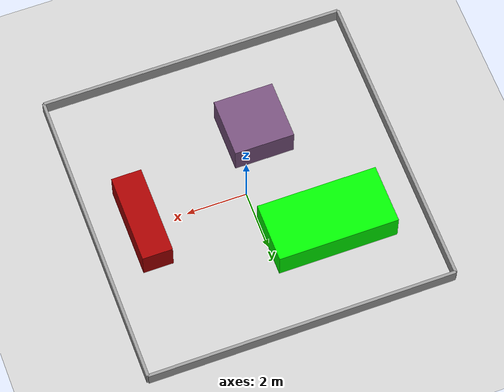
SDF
<sdf version="1.7">
 <world name="default">
  <light name="sun" type="directional">
   <pose>0 0 10 0 -0 0</pose>
   <diffuse>0.8 0.8 0.8 1</diffuse>
   <specular>0.1 0.1 0.1 1</specular>
   <attenuation>
    <range>1000</range>
    <constant>0.9</constant>
    <linear>0.01</linear>
    <quadratic>0.001</quadratic>
   </attenuation>
   <direction>-0.5 0.5 -1</direction>
   <spot><inner_angle>0</inner_angle><outer_angle>0</outer_angle><falloff>0</falloff></spot>
  </light>
  <model name="ground_plane">
   <static>1</static>
   <link name="link">
    <collision name="collision">
     <geometry><plane><normal>0 0 1</normal><size>100 100</size></plane></geometry>
     <surface><friction><ode><mu>100</mu><mu2>50</mu2></ode></friction></surface>
    </collision>
    <visual name="visual">
     <cast_shadows>0</cast_shadows>
     <geometry><plane><normal>0 0 1</normal><size>100 100</size></plane></geometry>
     <material>
      <script><uri>file://media/materials/scripts/gazebo.material</uri><name>Gazebo/Grey</name></script>
     </material>
    </visual>
   </link>
  </model>
  <gravity>0 0 -9.8</gravity>
  <magnetic_field>6e-06 2.3e-05 -4.2e-05</magnetic_field>
  <atmosphere type="adiabatic"/>
  <physics name="default_physics" default="0" type="ode">
   <max_step_size>0.001</max_step_size>
   <real_time_factor>1</real_time_factor>
   <real_time_update_rate>1000</real_time_update_rate>
  </physics>
  <scene><ambient>0.4 0.4 0.4 1</ambient><background>0.7 0.7 0.7 1</background><shadows>1</shadows></scene>
  <spherical_coordinates>
   <surface_model>EARTH_WGS84</surface_model>
   <latitude_deg>0</latitude_deg>
   <longitude_deg>0</longitude_deg>
   <elevation>0</elevation>
   <heading_deg>0</heading_deg>
  </spherical_coordinates>
  <model name="grey_wall">
   <static>1</static>
   <link name="link">
    <pose>0 0 1.4 0 -0 0</pose>
    <collision name="collision"><geometry><box><size>10.2 0.1 0.5</size></box></geometry></collision>
    <visual name="visual">
     <cast_shadows>0</cast_shadows>
     <geometry><box><size>10.2 0.1 0.5</size></box></geometry>
     <material>
      <script>
       <uri>model://grey_wall/materials/scripts</uri>
       <uri>model://grey_wall/materials/textures</uri>
       <name>vrc/grey_wall</name>
      </script>
     </material>
    </visual>
   </link>
   <pose>0 -5.1 -1.1 0 -0 0</pose>
  </model>
  <model name="grey_wall_0">
   <static>1</static>
   <link name="link">
    <pose>0 0 1.4 0 -0 0</pose>
    <collision name="collision"><geometry><box><size>10.2 0.1 0.5</size></box></geometry></collision>
    <visual name="visual">
     <cast_shadows>0</cast_shadows>
     <geometry><box><size>10.2 0.1 0.5</size></box></geometry>
     <material>
      <script>
       <uri>model://grey_wall/materials/scripts</uri>
       <uri>model://grey_wall/materials/textures</uri>
       <name>vrc/grey_wall</name>
      </script>
     </material>
    </visual>
   </link>
   <pose>5.1 0 -1.1 0 -0 1.57</pose>
  </model>
  <model name="grey_wall_0_clone">
   <static>1</static>
   <link name="link">
    <pose>0 0 1.4 0 -0 0</pose>
    <collision name="collision"><geometry><box><size>10.2 0.1 0.5</size></box></geometry></collision>
    <visual name="visual">
     <cast_shadows>0</cast_shadows>
     <geometry><box><size>10.2 0.1 0.5</size></box></geometry>
     <material>
      <script>
       <uri>model://grey_wall/materials/scripts</uri>
       <uri>model://grey_wall/materials/textures</uri>
       <name>vrc/grey_wall</name>
      </script>
     </material>
    </visual>
   </link>
   <pose>-5.1 0 -1.1 0 -0 1.57</pose>
  </model>
  <model name="grey_wall_clone">
   <static>1</static>
   <link name="link">
    <pose>0 0 1.4 0 -0 0</pose>
    <collision name="collision"><geometry><box><size>10.2 0.1 0.5</size></box></geometry></collision>
    <visual name="visual">
     <cast_shadows>0</cast_shadows>
     <geometry><box><size>10.2 0.1 0.5</size></box></geometry>
     <material>
      <script>
       <uri>model://grey_wall/materials/scripts</uri>
       <uri>model://grey_wall/materials/textures</uri>
       <name>vrc/grey_wall</name>
      </script>
     </material>
    </visual>
   </link>
   <pose>0 5.1 -1.1 0 -0 0</pose>
  </model>
  <model name="my_box7">
   <link name="link_0">
    <inertial>
     <mass>1</mass>
     <inertia>
      <ixx>0.166667</ixx>
      <ixy>0</ixy>
      <ixz>0</ixz>
      <iyy>0.166667</iyy>
      <iyz>0</iyz>
      <izz>0.166667</izz>
     </inertia>
    </inertial>
    <visual name="visual">
     <geometry><box><size>2 2 1</size></box></geometry>
     <material>
      <lighting>1</lighting>
      <script><uri>file://media/materials/scripts/gazebo.material</uri><name>Gazebo/Grey</name></script>
      <shader type="pixel"><normal_map>__default__</normal_map></shader>
      <ambient>0.459 0.314 0.482 1</ambient>
      <diffuse>0.7 0.7 0.7 1</diffuse>
      <specular>0.01 0.01 0.01 1</specular>
      <emissive>0 0 0 1</emissive>
     </material>
    </visual>
    <collision name="collision">
     <geometry><box><size>1 1 1</size></box></geometry>
     <surface>
      <friction>
       <ode><mu>1</mu><mu2>1</mu2><fdir1>0 0 0</fdir1><slip1>0</slip1><slip2>0</slip2></ode>
       <torsional>
        <coefficient>1</coefficient>
        <patch_radius>0</patch_radius>
        <surface_radius>0</surface_radius>
        <use_patch_radius>1</use_patch_radius>
        <ode><slip>0</slip></ode>
       </torsional>
      </friction>
      <bounce><restitution_coefficient>0</restitution_coefficient><threshold>1e+06</threshold></bounce>
      <contact>
       <collide_without_contact>0</collide_without_contact>
       <collide_without_contact_bitmask>1</collide_without_contact_bitmask>
       <collide_bitmask>1</collide_bitmask>
       <ode>
        <soft_cfm>0</soft_cfm>
        <soft_erp>0.2</soft_erp>
        <kp>1e+13</kp>
        <kd>1</kd>
        <max_vel>0.01</max_vel>
        <min_depth>0</min_depth>
       </ode>
       <bullet>
        <split_impulse>1</split_impulse>
        <split_impulse_penetration_threshold>-0.01</split_impulse_penetration_threshold>
        <soft_cfm>0</soft_cfm>
        <soft_erp>0.2</soft_erp>
        <kp>1e+13</kp>
        <kd>1</kd>
       </bullet>
      </contact>
     </surface>
    </collision>
   </link>
   <static>0</static>
   <pose>-1 -2 0.5 0 -0 0</pose>
  </model>
  <model name="my_box8">
   <link name="link_1">
    <inertial>
     <mass>1</mass>
     <inertia>
      <ixx>0.166667</ixx>
      <ixy>0</ixy>
      <ixz>0</ixz>
      <iyy>0.166667</iyy>
      <iyz>0</iyz>
      <izz>0.166667</izz>
     </inertia>
    </inertial>
    <visual name="visual">
     <geometry><box><size>4 2 1</size></box></geometry>
     <material>
      <lighting>1</lighting>
      <script><uri>file://media/materials/scripts/gazebo.material</uri><name>Gazebo/Grey</name></script>
      <shader type="pixel"><normal_map>__default__</normal_map></shader>
      <ambient>0 1 0 1</ambient>
      <diffuse>0.7 0.7 0.7 1</diffuse>
      <specular>0.01 0.01 0.01 1</specular>
      <emissive>0 0 0 1</emissive>
     </material>
    </visual>
    <collision name="collision">
     <geometry><box><size>1 1 1</size></box></geometry>
     <surface>
      <friction>
       <ode><mu>1</mu><mu2>1</mu2><fdir1>0 0 0</fdir1><slip1>0</slip1><slip2>0</slip2></ode>
       <torsional>
        <coefficient>1</coefficient>
        <patch_radius>0</patch_radius>
        <surface_radius>0</surface_radius>
        <use_patch_radius>1</use_patch_radius>
        <ode><slip>0</slip></ode>
       </torsional>
      </friction>
      <bounce><restitution_coefficient>0</restitution_coefficient><threshold>1e+06</threshold></bounce>
      <contact>
       <collide_without_contact>0</collide_without_contact>
       <collide_without_contact_bitmask>1</collide_without_contact_bitmask>
       <collide_bitmask>1</collide_bitmask>
       <ode>
        <soft_cfm>0</soft_cfm>
        <soft_erp>0.2</soft_erp>
        <kp>1e+13</kp>
        <kd>1</kd>
        <max_vel>0.01</max_vel>
        <min_depth>0</min_depth>
       </ode>
       <bullet>
        <split_impulse>1</split_impulse>
        <split_impulse_penetration_threshold>-0.01</split_impulse_penetration_threshold>
        <soft_cfm>0</soft_cfm>
        <soft_erp>0.2</soft_erp>
        <kp>1e+13</kp>
        <kd>1</kd>
       </bullet>
      </contact>
     </surface>
    </collision>
   </link>
   <static>0</static>
   <pose>-2 2 0.5 0 -0 0</pose>
  </model>
  <model name="my_box9">
   <link name="link_2">
    <inertial>
     <mass>1</mass>
     <inertia>
      <ixx>0.166667</ixx>
      <ixy>0</ixy>
      <ixz>0</ixz>
      <iyy>0.166667</iyy>
      <iyz>0</iyz>
      <izz>0.166667</izz>
     </inertia>
    </inertial>
    <visual name="visual">
     <geometry><box><size>1 3 1</size></box></geometry>
     <material>
      <lighting>1</lighting>
      <script><uri>file://media/materials/scripts/gazebo.material</uri><name>Gazebo/Grey</name></script>
      <shader type="pixel"><normal_map>__default__</normal_map></shader>
      <ambient>0.643 0 0 1</ambient>
      <diffuse>0.7 0.7 0.7 1</diffuse>
      <specular>0.01 0.01 0.01 1</specular>
      <emissive>0 0 0 1</emissive>
     </material>
    </visual>
    <collision name="collision">
     <geometry><box><size>1 1 1</size></box></geometry>
     <surface>
      <friction>
       <ode><mu>1</mu><mu2>1</mu2><fdir1>0 0 0</fdir1><slip1>0</slip1><slip2>0</slip2></ode>
       <torsional>
        <coefficient>1</coefficient>
        <patch_radius>0</patch_radius>
        <surface_radius>0</surface_radius>
        <use_patch_radius>1</use_patch_radius>
        <ode><slip>0</slip></ode>
       </torsional>
      </friction>
      <bounce><restitution_coefficient>0</restitution_coefficient><threshold>1e+06</threshold></bounce>
      <contact>
       <collide_without_contact>0</collide_without_contact>
       <collide_without_contact_bitmask>1</collide_without_contact_bitmask>
       <collide_bitmask>1</collide_bitmask>
       <ode>
        <soft_cfm>0</soft_cfm>
        <soft_erp>0.2</soft_erp>
        <kp>1e+13</kp>
        <kd>1</kd>
        <max_vel>0.01</max_vel>
        <min_depth>0</min_depth>
       </ode>
       <bullet>
        <split_impulse>1</split_impulse>
        <split_impulse_penetration_threshold>-0.01</split_impulse_penetration_threshold>
        <soft_cfm>0</soft_cfm>
        <soft_erp>0.2</soft_erp>
        <kp>1e+13</kp>
        <kd>1</kd>
       </bullet>
      </contact>
     </surface>
    </collision>
   </link>
   <static>0</static>
   <pose>3.5 -0 0.5 0 -0 0</pose>
  </model>
 </world>
</sdf>
